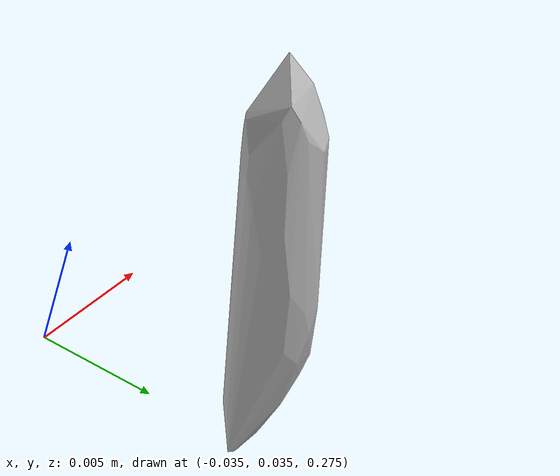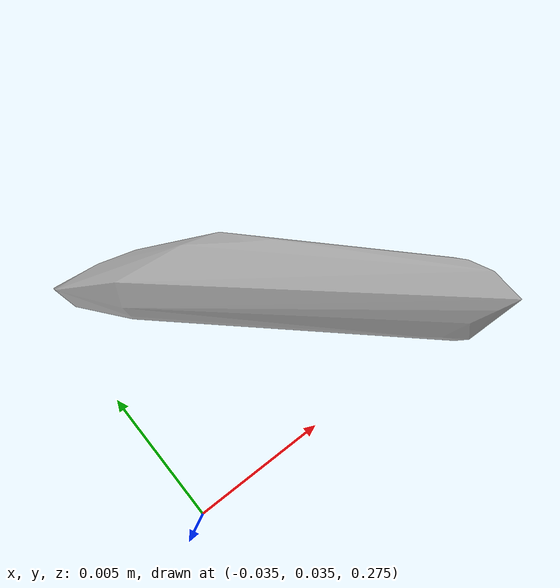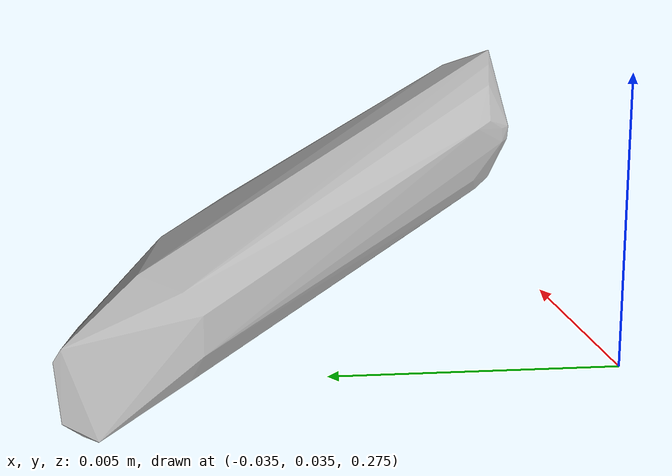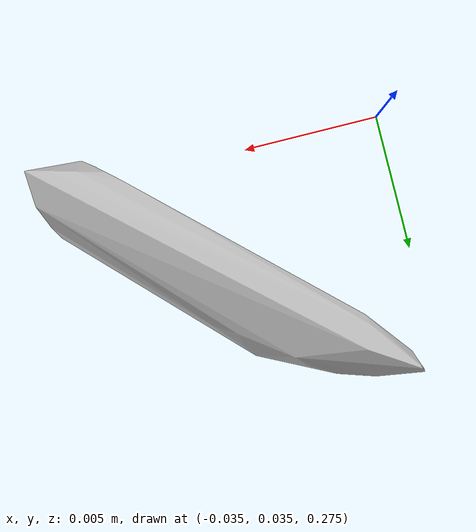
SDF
<?xml version="1.0"?>
<sdf version="1.7">
  <model name="vascular_partexport022">
    <link name="vascular_partexport022_body">
      <visual name="vascular_partexport022_visual">
        <geometry>
          <mesh>
            <uri>vascular_partexport022.obj</uri>
          </mesh>
        </geometry>
      </visual>
      <collision name="vascular_partexport022_collision">
        <geometry>
          <mesh>
            <uri>vascular_partexport022.obj</uri>
          </mesh>
        </geometry>
      </collision>
    </link>
    <frame name="vascular_partexport022_center">
      <pose relative_to="vascular_partexport022_body">0 0 0 0 0 0</pose>
    </frame>
  </model>
</sdf>
